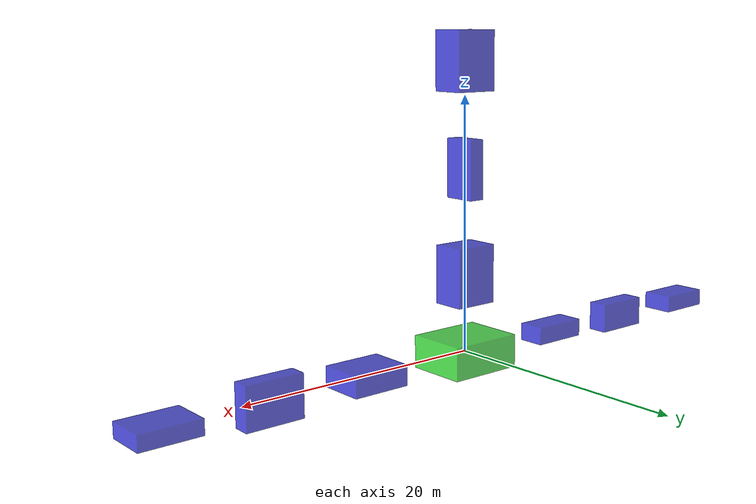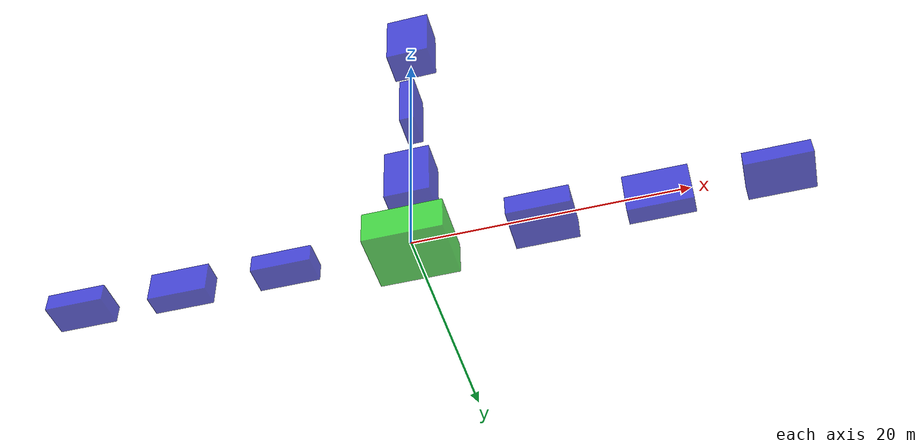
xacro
<?xml version="1.0"?>
<robot xmlns:xacro="http://www.ros.org/wiki/xacro" name="tri-snake">
  <xacro:property name="baselen" value="6"/>
  <xacro:property name="baseheight" value="2.6"/>
  <xacro:property name="bodylen" value="4.6"/>
  <xacro:property name="joint_offset" value="0.5"/>

  <material name="blue">
    <color rgba="0 0 0.8 0.7"/>
  </material>

  <material name="green">
    <color rgba="0 0.8 0 0.7"/>
  </material>

  <link name="base">
    <visual>
      <geometry>
        <box size="${baselen} 5 ${baseheight}"/>
      </geometry>
      <material name="green"/>
    </visual>
  </link>

  <!-- First chain -->
  <joint name="body1_to_base" type="revolute">
    <parent link="base"/>
    <child link="body1"/>
    <origin rpy="0 0 0" xyz="${baselen-joint_offset} 0 0"/>
    <axis xyz="0 1 0"/>
    <limit lower="${-pi/2}" upper="${pi/2}" effort="100" velocity="5"/>
  </joint>

  <link name="body1">
    <visual>
      <geometry>
        <box size="${bodylen} 3.7 1.6"/>
      </geometry>
      <origin rpy="0 0 0" xyz="${bodylen-joint_offset} 0 0"/>
      <material name="blue"/>
    </visual>
  </link>

  <joint name="body2_to_body1" type="revolute">
    <parent link="body1"/>
    <child link="body2"/>
    <origin rpy="0 0 0" xyz="${bodylen*2-joint_offset*2} 0 0"/>
    <axis xyz="0 0 1"/>
    <limit lower="${-pi/2}" upper="${pi/2}" effort="100" velocity="5"/>
  </joint>

  <link name="body2">
    <visual>
      <geometry>
        <box size="${bodylen} 1.4 3.3"/>
      </geometry>
      <origin rpy="0 0 0" xyz="${bodylen-joint_offset} 0 0"/>
      <material name="blue"/>
    </visual>
  </link>

  <joint name="body3_to_body2" type="revolute">
    <parent link="body2"/>
    <child link="body3"/>
    <origin rpy="0 0 0" xyz="${bodylen*2-joint_offset*2} 0 0"/>
    <axis xyz="0 1 0"/>
    <limit lower="${-pi/2}" upper="${pi/2}" effort="100" velocity="5"/>
  </joint>

  <link name="body3">
    <visual>
      <geometry>
        <box size="${bodylen} 3.4 1.16"/>
      </geometry>
      <origin rpy="0 0 0" xyz="${bodylen-joint_offset} 0 0"/>
      <material name="blue"/>
    </visual>
  </link>

  <!-- Second chain -->
  <joint name="body4_to_base" type="revolute">
    <parent link="base"/>
    <child link="body4"/>
    <origin rpy="0 0 0" xyz="${-(baselen-joint_offset)} 0 0"/>
    <axis xyz="0 1 0"/>
    <limit lower="${-pi/2}" upper="${pi/2}" effort="100" velocity="5"/>
  </joint>

  <link name="body4">
    <visual>
      <geometry>
        <box size="${bodylen} 2.27 1.4"/>
      </geometry>
      <origin rpy="0 0 0" xyz="${-(bodylen-joint_offset)} 0 0"/>
      <material name="blue"/>
    </visual>
  </link>

  <joint name="body5_to_body4" type="revolute">
    <parent link="body4"/>
    <child link="body5"/>
    <origin rpy="0 0 0" xyz="${-(bodylen*2-joint_offset*2)} 0 0"/>
    <axis xyz="0 0 1"/>
    <limit lower="${-pi/2}" upper="${pi/2}" effort="100" velocity="5"/>
  </joint>

  <link name="body5">
    <visual>
      <geometry>
        <box size="${bodylen} 1.7 2.4"/>
      </geometry>
      <origin rpy="0 0 0" xyz="${-(bodylen-joint_offset)} 0 0"/>
      <material name="blue"/>
    </visual>
  </link>

  <joint name="body6_to_body5" type="revolute">
    <parent link="body5"/>
    <child link="body6"/>
    <origin rpy="0 0 0" xyz="${-(bodylen*2-joint_offset*2)} 0 0"/>
    <axis xyz="0 1 0"/>
    <limit lower="${-pi/2}" upper="${pi/2}" effort="100" velocity="5"/>
  </joint>

  <link name="body6">
    <visual>
      <geometry>
        <box size="${bodylen} 2.7 1.4"/>
      </geometry>
      <origin rpy="0 0 0" xyz="${-(bodylen-joint_offset)} 0 0"/>
      <material name="blue"/>
    </visual>
  </link>

  <!-- Third chain -->
  <joint name="body7_to_base" type="revolute">
    <parent link="base"/>
    <child link="body7"/>
    <origin rpy="0 0 0" xyz="0 0 ${baseheight-joint_offset}"/>
    <axis xyz="1 0 0"/>
    <limit lower="${-pi/2}" upper="${pi/2}" effort="100" velocity="5"/>
  </joint>

  <link name="body7">
    <visual>
      <geometry>
        <box size="3.5 2.7 ${bodylen}"/>
      </geometry>
      <origin rpy="0 0 0" xyz="0 0 ${bodylen-joint_offset} "/>
      <material name="blue"/>
    </visual>
  </link>

  <joint name="body8_to_body7" type="revolute">
    <parent link="body7"/>
    <child link="body8"/>
    <origin rpy="0 0 0" xyz="0 0 ${bodylen*2-joint_offset*2}"/>
    <axis xyz="0 1 0"/>
    <limit lower="${-pi/2}" upper="${pi/2}" effort="100" velocity="5"/>
  </joint>

  <link name="body8">
    <visual>
      <geometry>
        <box size="1.2 2.7 ${bodylen}"/>
      </geometry>
      <origin rpy="0 0 0" xyz="0 0 ${bodylen-joint_offset}"/>
      <material name="blue"/>
    </visual>
  </link>

  <joint name="body9_to_body8" type="revolute">
    <parent link="body8"/>
    <child link="body9"/>
    <origin rpy="0 0 0" xyz="0 0 ${bodylen*2-joint_offset*2}"/>
    <axis xyz="1 0 0"/>
    <limit lower="${-pi/2}" upper="${pi/2}" effort="100" velocity="5"/>
  </joint>

  <link name="body9">
    <visual>
      <geometry>
        <box size="3.5 2.7 ${bodylen}"/>
      </geometry>
      <origin rpy="0 0 0" xyz="0 0 ${bodylen-joint_offset}"/>
      <material name="blue"/>
    </visual>
  </link>

</robot>
